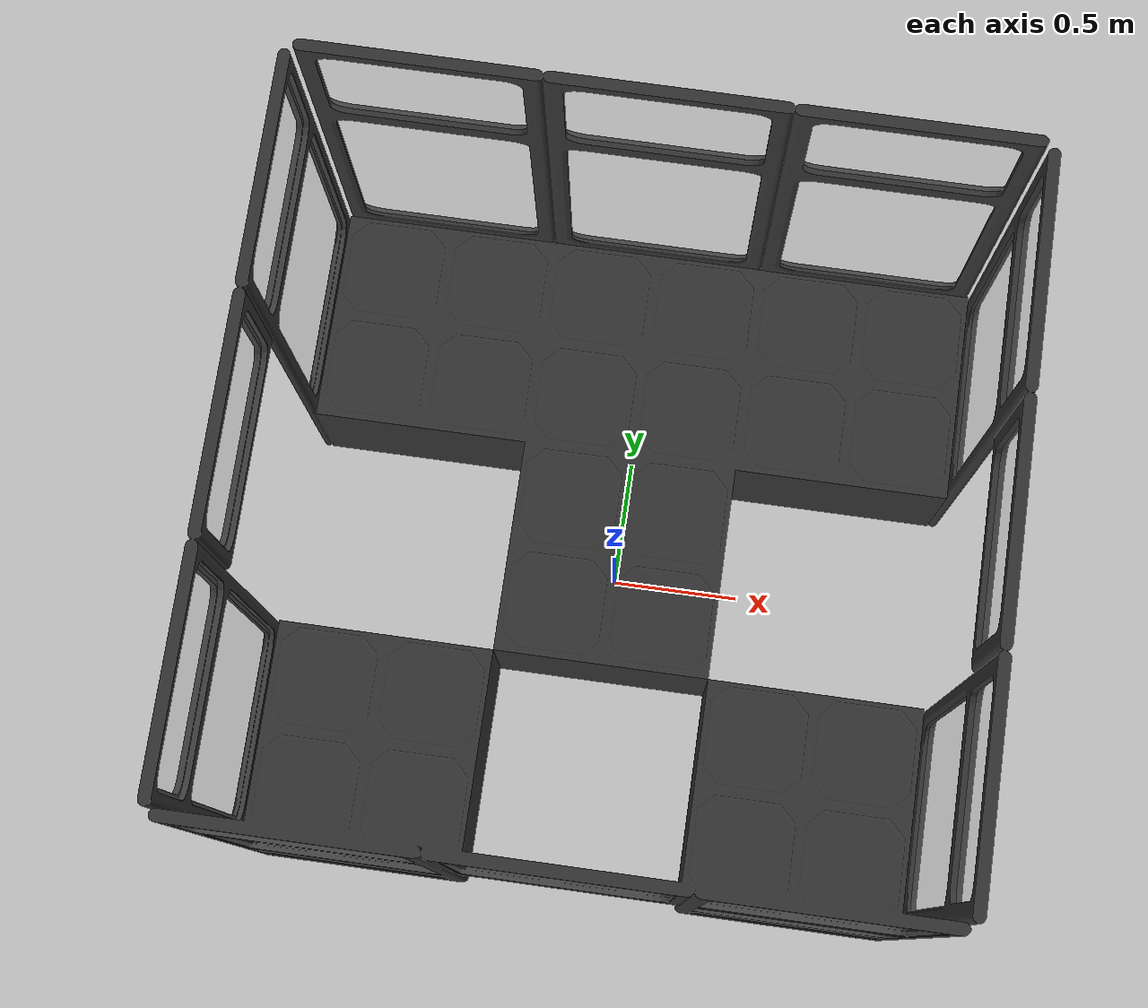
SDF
<?xml version="1.0" ?>
<sdf version="1.6">
    <model name="enclosure_rmf">
        <!-- scenery only: collisions removed so conveyors can run through the walls -->
        <static>true</static>
        <link name="enclosure_link">
                        <visual name="visual_0">
                <geometry><mesh><uri>model://enclosure_rmf/meshes/enclosure_rmf_0.obj</uri><scale>1.67 1.67 1.0</scale></mesh></geometry>
                <material><ambient>0.800 0.800 0.800 0.051</ambient><diffuse>0.800 0.800 0.800 0.051</diffuse><specular>0.2 0.2 0.2 1</specular></material>
            </visual>
            <visual name="visual_1">
                <geometry><mesh><uri>model://enclosure_rmf/meshes/enclosure_rmf_1.obj</uri><scale>1.67 1.67 1.0</scale></mesh></geometry>
                <material><ambient>0.200 0.200 0.200 1.000</ambient><diffuse>0.200 0.200 0.200 1.000</diffuse><specular>0.2 0.2 0.2 1</specular></material>
            </visual>
            <visual name="visual_2">
                <geometry><mesh><uri>model://enclosure_rmf/meshes/enclosure_rmf_2.obj</uri><scale>1.67 1.67 1.0</scale></mesh></geometry>
                <material><ambient>0.031 0.031 0.031 1.000</ambient><diffuse>0.031 0.031 0.031 1.000</diffuse><specular>0.2 0.2 0.2 1</specular></material>
            </visual>
        </link>
    </model>
</sdf>
